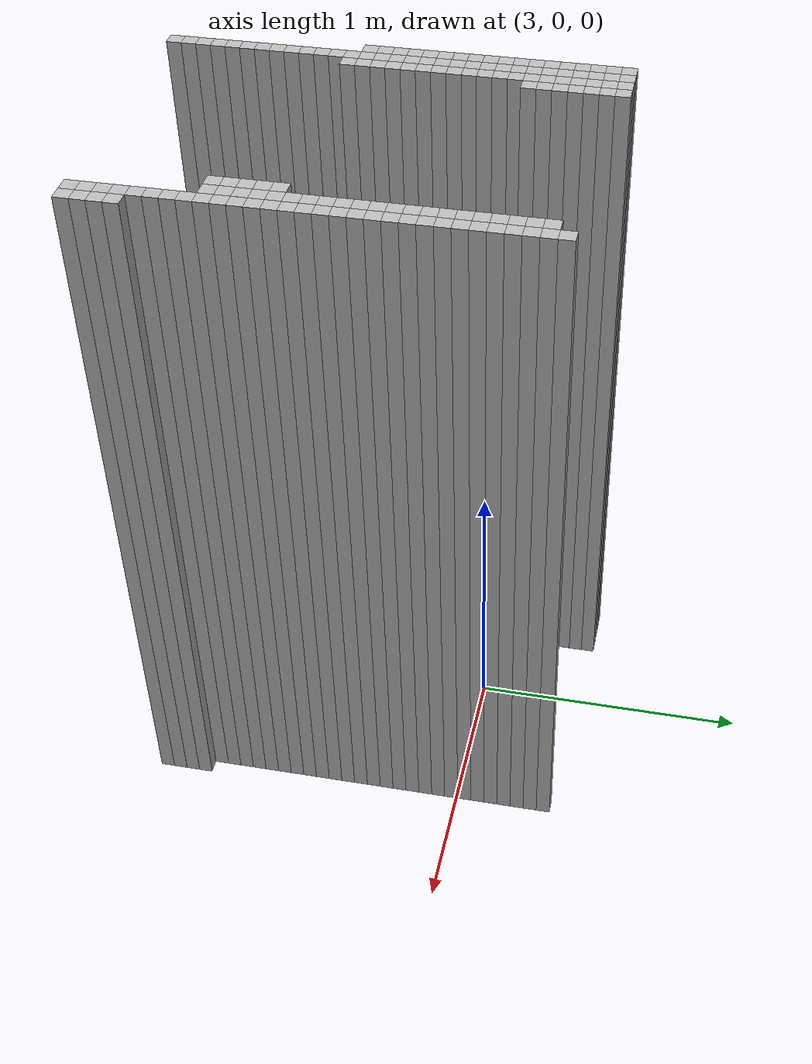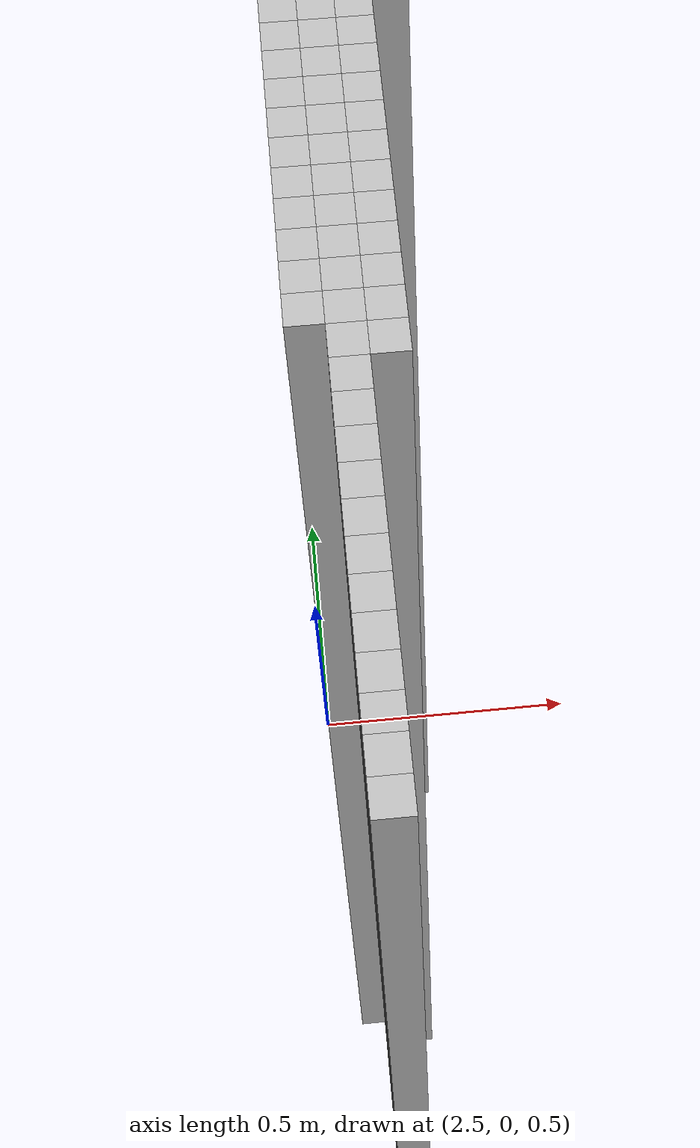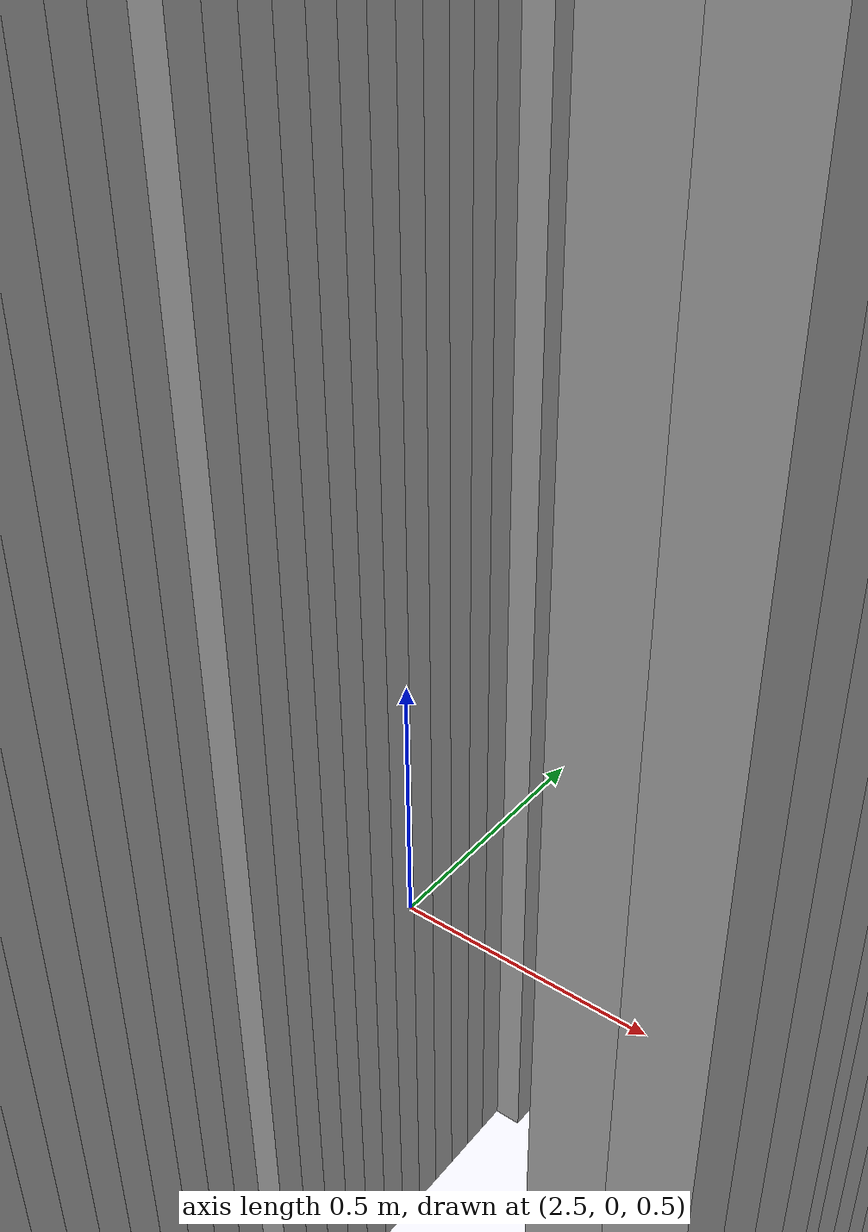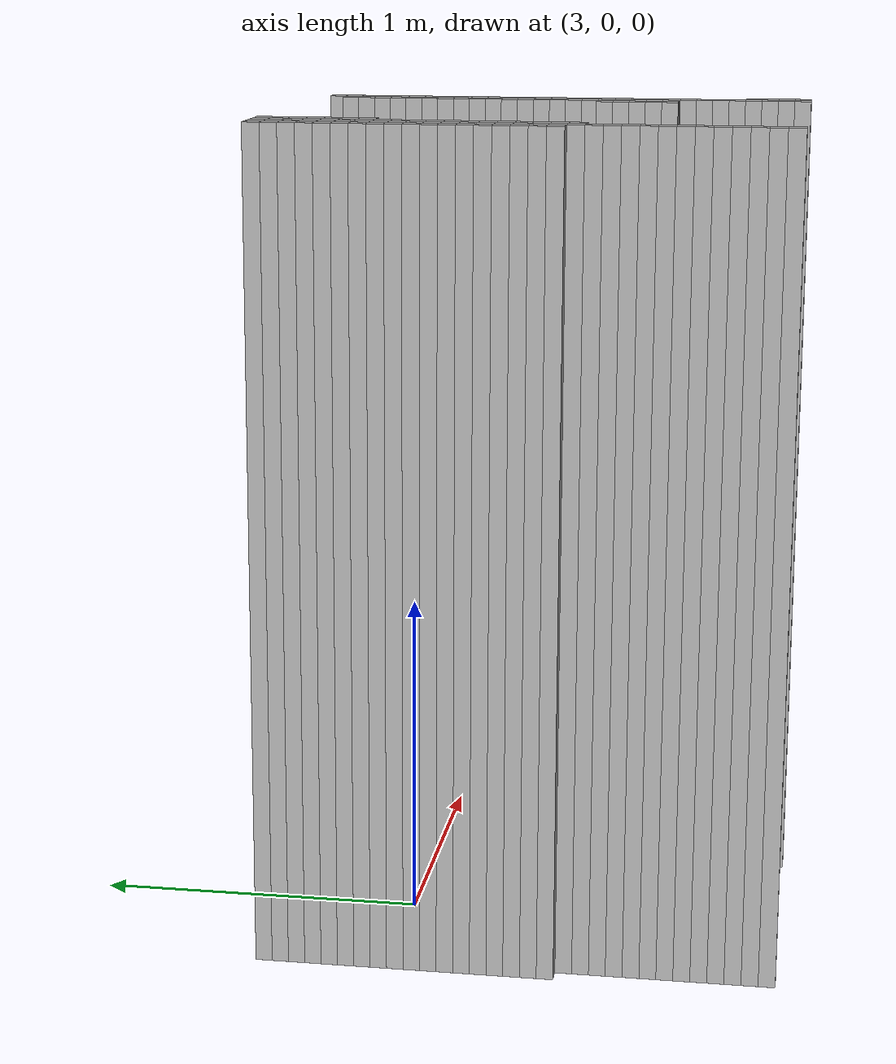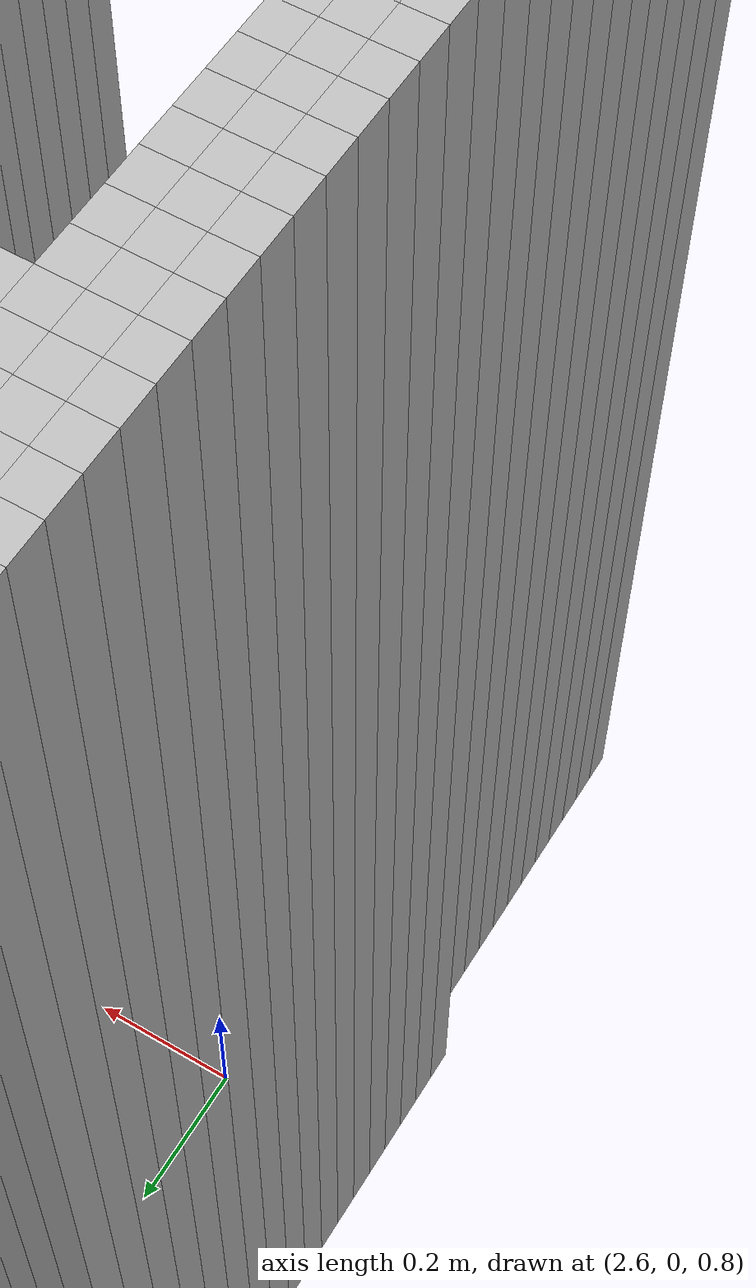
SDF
<sdf version="1.9">
 <world name="map_world">
  <model name="wall_274_146">
   <static>true</static>
   <pose>2.539 0.380 1.250 0 0 0</pose>
   <link name="link">
    <collision name="collision"><geometry><box><size>0.050 0.050 2.500</size></box></geometry></collision>
    <visual name="visual"><geometry><box><size>0.050 0.050 2.500</size></box></geometry></visual>
   </link>
  </model>
  <model name="wall_275_146">
   <static>true</static>
   <pose>2.589 0.380 1.250 0 0 0</pose>
   <link name="link">
    <collision name="collision"><geometry><box><size>0.050 0.050 2.500</size></box></geometry></collision>
    <visual name="visual"><geometry><box><size>0.050 0.050 2.500</size></box></geometry></visual>
   </link>
  </model>
  <model name="wall_276_146">
   <static>true</static>
   <pose>2.639 0.380 1.250 0 0 0</pose>
   <link name="link">
    <collision name="collision"><geometry><box><size>0.050 0.050 2.500</size></box></geometry></collision>
    <visual name="visual"><geometry><box><size>0.050 0.050 2.500</size></box></geometry></visual>
   </link>
  </model>
  <model name="wall_277_146">
   <static>true</static>
   <pose>2.689 0.380 1.250 0 0 0</pose>
   <link name="link">
    <collision name="collision"><geometry><box><size>0.050 0.050 2.500</size></box></geometry></collision>
    <visual name="visual"><geometry><box><size>0.050 0.050 2.500</size></box></geometry></visual>
   </link>
  </model>
  <model name="wall_274_147">
   <static>true</static>
   <pose>2.539 0.330 1.250 0 0 0</pose>
   <link name="link">
    <collision name="collision"><geometry><box><size>0.050 0.050 2.500</size></box></geometry></collision>
    <visual name="visual"><geometry><box><size>0.050 0.050 2.500</size></box></geometry></visual>
   </link>
  </model>
  <model name="wall_275_147">
   <static>true</static>
   <pose>2.589 0.330 1.250 0 0 0</pose>
   <link name="link">
    <collision name="collision"><geometry><box><size>0.050 0.050 2.500</size></box></geometry></collision>
    <visual name="visual"><geometry><box><size>0.050 0.050 2.500</size></box></geometry></visual>
   </link>
  </model>
  <model name="wall_276_147">
   <static>true</static>
   <pose>2.639 0.330 1.250 0 0 0</pose>
   <link name="link">
    <collision name="collision"><geometry><box><size>0.050 0.050 2.500</size></box></geometry></collision>
    <visual name="visual"><geometry><box><size>0.050 0.050 2.500</size></box></geometry></visual>
   </link>
  </model>
  <model name="wall_277_147">
   <static>true</static>
   <pose>2.689 0.330 1.250 0 0 0</pose>
   <link name="link">
    <collision name="collision"><geometry><box><size>0.050 0.050 2.500</size></box></geometry></collision>
    <visual name="visual"><geometry><box><size>0.050 0.050 2.500</size></box></geometry></visual>
   </link>
  </model>
  <model name="wall_294_147">
   <static>true</static>
   <pose>3.539 0.330 1.250 0 0 0</pose>
   <link name="link">
    <collision name="collision"><geometry><box><size>0.050 0.050 2.500</size></box></geometry></collision>
    <visual name="visual"><geometry><box><size>0.050 0.050 2.500</size></box></geometry></visual>
   </link>
  </model>
  <model name="wall_274_148">
   <static>true</static>
   <pose>2.539 0.280 1.250 0 0 0</pose>
   <link name="link">
    <collision name="collision"><geometry><box><size>0.050 0.050 2.500</size></box></geometry></collision>
    <visual name="visual"><geometry><box><size>0.050 0.050 2.500</size></box></geometry></visual>
   </link>
  </model>
  <model name="wall_275_148">
   <static>true</static>
   <pose>2.589 0.280 1.250 0 0 0</pose>
   <link name="link">
    <collision name="collision"><geometry><box><size>0.050 0.050 2.500</size></box></geometry></collision>
    <visual name="visual"><geometry><box><size>0.050 0.050 2.500</size></box></geometry></visual>
   </link>
  </model>
  <model name="wall_276_148">
   <static>true</static>
   <pose>2.639 0.280 1.250 0 0 0</pose>
   <link name="link">
    <collision name="collision"><geometry><box><size>0.050 0.050 2.500</size></box></geometry></collision>
    <visual name="visual"><geometry><box><size>0.050 0.050 2.500</size></box></geometry></visual>
   </link>
  </model>
  <model name="wall_277_148">
   <static>true</static>
   <pose>2.689 0.280 1.250 0 0 0</pose>
   <link name="link">
    <collision name="collision"><geometry><box><size>0.050 0.050 2.500</size></box></geometry></collision>
    <visual name="visual"><geometry><box><size>0.050 0.050 2.500</size></box></geometry></visual>
   </link>
  </model>
  <model name="wall_293_148">
   <static>true</static>
   <pose>3.489 0.280 1.250 0 0 0</pose>
   <link name="link">
    <collision name="collision"><geometry><box><size>0.050 0.050 2.500</size></box></geometry></collision>
    <visual name="visual"><geometry><box><size>0.050 0.050 2.500</size></box></geometry></visual>
   </link>
  </model>
  <model name="wall_294_148">
   <static>true</static>
   <pose>3.539 0.280 1.250 0 0 0</pose>
   <link name="link">
    <collision name="collision"><geometry><box><size>0.050 0.050 2.500</size></box></geometry></collision>
    <visual name="visual"><geometry><box><size>0.050 0.050 2.500</size></box></geometry></visual>
   </link>
  </model>
  <model name="wall_274_149">
   <static>true</static>
   <pose>2.539 0.230 1.250 0 0 0</pose>
   <link name="link">
    <collision name="collision"><geometry><box><size>0.050 0.050 2.500</size></box></geometry></collision>
    <visual name="visual"><geometry><box><size>0.050 0.050 2.500</size></box></geometry></visual>
   </link>
  </model>
  <model name="wall_275_149">
   <static>true</static>
   <pose>2.589 0.230 1.250 0 0 0</pose>
   <link name="link">
    <collision name="collision"><geometry><box><size>0.050 0.050 2.500</size></box></geometry></collision>
    <visual name="visual"><geometry><box><size>0.050 0.050 2.500</size></box></geometry></visual>
   </link>
  </model>
  <model name="wall_276_149">
   <static>true</static>
   <pose>2.639 0.230 1.250 0 0 0</pose>
   <link name="link">
    <collision name="collision"><geometry><box><size>0.050 0.050 2.500</size></box></geometry></collision>
    <visual name="visual"><geometry><box><size>0.050 0.050 2.500</size></box></geometry></visual>
   </link>
  </model>
  <model name="wall_277_149">
   <static>true</static>
   <pose>2.689 0.230 1.250 0 0 0</pose>
   <link name="link">
    <collision name="collision"><geometry><box><size>0.050 0.050 2.500</size></box></geometry></collision>
    <visual name="visual"><geometry><box><size>0.050 0.050 2.500</size></box></geometry></visual>
   </link>
  </model>
  <model name="wall_293_149">
   <static>true</static>
   <pose>3.489 0.230 1.250 0 0 0</pose>
   <link name="link">
    <collision name="collision"><geometry><box><size>0.050 0.050 2.500</size></box></geometry></collision>
    <visual name="visual"><geometry><box><size>0.050 0.050 2.500</size></box></geometry></visual>
   </link>
  </model>
  <model name="wall_294_149">
   <static>true</static>
   <pose>3.539 0.230 1.250 0 0 0</pose>
   <link name="link">
    <collision name="collision"><geometry><box><size>0.050 0.050 2.500</size></box></geometry></collision>
    <visual name="visual"><geometry><box><size>0.050 0.050 2.500</size></box></geometry></visual>
   </link>
  </model>
  <model name="wall_274_150">
   <static>true</static>
   <pose>2.539 0.180 1.250 0 0 0</pose>
   <link name="link">
    <collision name="collision"><geometry><box><size>0.050 0.050 2.500</size></box></geometry></collision>
    <visual name="visual"><geometry><box><size>0.050 0.050 2.500</size></box></geometry></visual>
   </link>
  </model>
  <model name="wall_275_150">
   <static>true</static>
   <pose>2.589 0.180 1.250 0 0 0</pose>
   <link name="link">
    <collision name="collision"><geometry><box><size>0.050 0.050 2.500</size></box></geometry></collision>
    <visual name="visual"><geometry><box><size>0.050 0.050 2.500</size></box></geometry></visual>
   </link>
  </model>
  <model name="wall_276_150">
   <static>true</static>
   <pose>2.639 0.180 1.250 0 0 0</pose>
   <link name="link">
    <collision name="collision"><geometry><box><size>0.050 0.050 2.500</size></box></geometry></collision>
    <visual name="visual"><geometry><box><size>0.050 0.050 2.500</size></box></geometry></visual>
   </link>
  </model>
  <model name="wall_277_150">
   <static>true</static>
   <pose>2.689 0.180 1.250 0 0 0</pose>
   <link name="link">
    <collision name="collision"><geometry><box><size>0.050 0.050 2.500</size></box></geometry></collision>
    <visual name="visual"><geometry><box><size>0.050 0.050 2.500</size></box></geometry></visual>
   </link>
  </model>
  <model name="wall_293_150">
   <static>true</static>
   <pose>3.489 0.180 1.250 0 0 0</pose>
   <link name="link">
    <collision name="collision"><geometry><box><size>0.050 0.050 2.500</size></box></geometry></collision>
    <visual name="visual"><geometry><box><size>0.050 0.050 2.500</size></box></geometry></visual>
   </link>
  </model>
  <model name="wall_294_150">
   <static>true</static>
   <pose>3.539 0.180 1.250 0 0 0</pose>
   <link name="link">
    <collision name="collision"><geometry><box><size>0.050 0.050 2.500</size></box></geometry></collision>
    <visual name="visual"><geometry><box><size>0.050 0.050 2.500</size></box></geometry></visual>
   </link>
  </model>
  <model name="wall_274_151">
   <static>true</static>
   <pose>2.539 0.130 1.250 0 0 0</pose>
   <link name="link">
    <collision name="collision"><geometry><box><size>0.050 0.050 2.500</size></box></geometry></collision>
    <visual name="visual"><geometry><box><size>0.050 0.050 2.500</size></box></geometry></visual>
   </link>
  </model>
  <model name="wall_275_151">
   <static>true</static>
   <pose>2.589 0.130 1.250 0 0 0</pose>
   <link name="link">
    <collision name="collision"><geometry><box><size>0.050 0.050 2.500</size></box></geometry></collision>
    <visual name="visual"><geometry><box><size>0.050 0.050 2.500</size></box></geometry></visual>
   </link>
  </model>
  <model name="wall_276_151">
   <static>true</static>
   <pose>2.639 0.130 1.250 0 0 0</pose>
   <link name="link">
    <collision name="collision"><geometry><box><size>0.050 0.050 2.500</size></box></geometry></collision>
    <visual name="visual"><geometry><box><size>0.050 0.050 2.500</size></box></geometry></visual>
   </link>
  </model>
  <model name="wall_277_151">
   <static>true</static>
   <pose>2.689 0.130 1.250 0 0 0</pose>
   <link name="link">
    <collision name="collision"><geometry><box><size>0.050 0.050 2.500</size></box></geometry></collision>
    <visual name="visual"><geometry><box><size>0.050 0.050 2.500</size></box></geometry></visual>
   </link>
  </model>
  <model name="wall_293_151">
   <static>true</static>
   <pose>3.489 0.130 1.250 0 0 0</pose>
   <link name="link">
    <collision name="collision"><geometry><box><size>0.050 0.050 2.500</size></box></geometry></collision>
    <visual name="visual"><geometry><box><size>0.050 0.050 2.500</size></box></geometry></visual>
   </link>
  </model>
  <model name="wall_294_151">
   <static>true</static>
   <pose>3.539 0.130 1.250 0 0 0</pose>
   <link name="link">
    <collision name="collision"><geometry><box><size>0.050 0.050 2.500</size></box></geometry></collision>
    <visual name="visual"><geometry><box><size>0.050 0.050 2.500</size></box></geometry></visual>
   </link>
  </model>
  <model name="wall_274_152">
   <static>true</static>
   <pose>2.539 0.080 1.250 0 0 0</pose>
   <link name="link">
    <collision name="collision"><geometry><box><size>0.050 0.050 2.500</size></box></geometry></collision>
    <visual name="visual"><geometry><box><size>0.050 0.050 2.500</size></box></geometry></visual>
   </link>
  </model>
  <model name="wall_275_152">
   <static>true</static>
   <pose>2.589 0.080 1.250 0 0 0</pose>
   <link name="link">
    <collision name="collision"><geometry><box><size>0.050 0.050 2.500</size></box></geometry></collision>
    <visual name="visual"><geometry><box><size>0.050 0.050 2.500</size></box></geometry></visual>
   </link>
  </model>
  <model name="wall_276_152">
   <static>true</static>
   <pose>2.639 0.080 1.250 0 0 0</pose>
   <link name="link">
    <collision name="collision"><geometry><box><size>0.050 0.050 2.500</size></box></geometry></collision>
    <visual name="visual"><geometry><box><size>0.050 0.050 2.500</size></box></geometry></visual>
   </link>
  </model>
  <model name="wall_277_152">
   <static>true</static>
   <pose>2.689 0.080 1.250 0 0 0</pose>
   <link name="link">
    <collision name="collision"><geometry><box><size>0.050 0.050 2.500</size></box></geometry></collision>
    <visual name="visual"><geometry><box><size>0.050 0.050 2.500</size></box></geometry></visual>
   </link>
  </model>
  <model name="wall_293_152">
   <static>true</static>
   <pose>3.489 0.080 1.250 0 0 0</pose>
   <link name="link">
    <collision name="collision"><geometry><box><size>0.050 0.050 2.500</size></box></geometry></collision>
    <visual name="visual"><geometry><box><size>0.050 0.050 2.500</size></box></geometry></visual>
   </link>
  </model>
  <model name="wall_294_152">
   <static>true</static>
   <pose>3.539 0.080 1.250 0 0 0</pose>
   <link name="link">
    <collision name="collision"><geometry><box><size>0.050 0.050 2.500</size></box></geometry></collision>
    <visual name="visual"><geometry><box><size>0.050 0.050 2.500</size></box></geometry></visual>
   </link>
  </model>
  <model name="wall_274_153">
   <static>true</static>
   <pose>2.539 0.030 1.250 0 0 0</pose>
   <link name="link">
    <collision name="collision"><geometry><box><size>0.050 0.050 2.500</size></box></geometry></collision>
    <visual name="visual"><geometry><box><size>0.050 0.050 2.500</size></box></geometry></visual>
   </link>
  </model>
  <model name="wall_275_153">
   <static>true</static>
   <pose>2.589 0.030 1.250 0 0 0</pose>
   <link name="link">
    <collision name="collision"><geometry><box><size>0.050 0.050 2.500</size></box></geometry></collision>
    <visual name="visual"><geometry><box><size>0.050 0.050 2.500</size></box></geometry></visual>
   </link>
  </model>
  <model name="wall_276_153">
   <static>true</static>
   <pose>2.639 0.030 1.250 0 0 0</pose>
   <link name="link">
    <collision name="collision"><geometry><box><size>0.050 0.050 2.500</size></box></geometry></collision>
    <visual name="visual"><geometry><box><size>0.050 0.050 2.500</size></box></geometry></visual>
   </link>
  </model>
  <model name="wall_293_153">
   <static>true</static>
   <pose>3.489 0.030 1.250 0 0 0</pose>
   <link name="link">
    <collision name="collision"><geometry><box><size>0.050 0.050 2.500</size></box></geometry></collision>
    <visual name="visual"><geometry><box><size>0.050 0.050 2.500</size></box></geometry></visual>
   </link>
  </model>
  <model name="wall_294_153">
   <static>true</static>
   <pose>3.539 0.030 1.250 0 0 0</pose>
   <link name="link">
    <collision name="collision"><geometry><box><size>0.050 0.050 2.500</size></box></geometry></collision>
    <visual name="visual"><geometry><box><size>0.050 0.050 2.500</size></box></geometry></visual>
   </link>
  </model>
  <model name="wall_274_154">
   <static>true</static>
   <pose>2.539 -0.020 1.250 0 0 0</pose>
   <link name="link">
    <collision name="collision"><geometry><box><size>0.050 0.050 2.500</size></box></geometry></collision>
    <visual name="visual"><geometry><box><size>0.050 0.050 2.500</size></box></geometry></visual>
   </link>
  </model>
  <model name="wall_275_154">
   <static>true</static>
   <pose>2.589 -0.020 1.250 0 0 0</pose>
   <link name="link">
    <collision name="collision"><geometry><box><size>0.050 0.050 2.500</size></box></geometry></collision>
    <visual name="visual"><geometry><box><size>0.050 0.050 2.500</size></box></geometry></visual>
   </link>
  </model>
  <model name="wall_276_154">
   <static>true</static>
   <pose>2.639 -0.020 1.250 0 0 0</pose>
   <link name="link">
    <collision name="collision"><geometry><box><size>0.050 0.050 2.500</size></box></geometry></collision>
    <visual name="visual"><geometry><box><size>0.050 0.050 2.500</size></box></geometry></visual>
   </link>
  </model>
  <model name="wall_293_154">
   <static>true</static>
   <pose>3.489 -0.020 1.250 0 0 0</pose>
   <link name="link">
    <collision name="collision"><geometry><box><size>0.050 0.050 2.500</size></box></geometry></collision>
    <visual name="visual"><geometry><box><size>0.050 0.050 2.500</size></box></geometry></visual>
   </link>
  </model>
  <model name="wall_294_154">
   <static>true</static>
   <pose>3.539 -0.020 1.250 0 0 0</pose>
   <link name="link">
    <collision name="collision"><geometry><box><size>0.050 0.050 2.500</size></box></geometry></collision>
    <visual name="visual"><geometry><box><size>0.050 0.050 2.500</size></box></geometry></visual>
   </link>
  </model>
  <model name="wall_274_155">
   <static>true</static>
   <pose>2.539 -0.070 1.250 0 0 0</pose>
   <link name="link">
    <collision name="collision"><geometry><box><size>0.050 0.050 2.500</size></box></geometry></collision>
    <visual name="visual"><geometry><box><size>0.050 0.050 2.500</size></box></geometry></visual>
   </link>
  </model>
  <model name="wall_275_155">
   <static>true</static>
   <pose>2.589 -0.070 1.250 0 0 0</pose>
   <link name="link">
    <collision name="collision"><geometry><box><size>0.050 0.050 2.500</size></box></geometry></collision>
    <visual name="visual"><geometry><box><size>0.050 0.050 2.500</size></box></geometry></visual>
   </link>
  </model>
  <model name="wall_276_155">
   <static>true</static>
   <pose>2.639 -0.070 1.250 0 0 0</pose>
   <link name="link">
    <collision name="collision"><geometry><box><size>0.050 0.050 2.500</size></box></geometry></collision>
    <visual name="visual"><geometry><box><size>0.050 0.050 2.500</size></box></geometry></visual>
   </link>
  </model>
  <model name="wall_293_155">
   <static>true</static>
   <pose>3.489 -0.070 1.250 0 0 0</pose>
   <link name="link">
    <collision name="collision"><geometry><box><size>0.050 0.050 2.500</size></box></geometry></collision>
    <visual name="visual"><geometry><box><size>0.050 0.050 2.500</size></box></geometry></visual>
   </link>
  </model>
  <model name="wall_294_155">
   <static>true</static>
   <pose>3.539 -0.070 1.250 0 0 0</pose>
   <link name="link">
    <collision name="collision"><geometry><box><size>0.050 0.050 2.500</size></box></geometry></collision>
    <visual name="visual"><geometry><box><size>0.050 0.050 2.500</size></box></geometry></visual>
   </link>
  </model>
  <model name="wall_274_156">
   <static>true</static>
   <pose>2.539 -0.120 1.250 0 0 0</pose>
   <link name="link">
    <collision name="collision"><geometry><box><size>0.050 0.050 2.500</size></box></geometry></collision>
    <visual name="visual"><geometry><box><size>0.050 0.050 2.500</size></box></geometry></visual>
   </link>
  </model>
  <model name="wall_275_156">
   <static>true</static>
   <pose>2.589 -0.120 1.250 0 0 0</pose>
   <link name="link">
    <collision name="collision"><geometry><box><size>0.050 0.050 2.500</size></box></geometry></collision>
    <visual name="visual"><geometry><box><size>0.050 0.050 2.500</size></box></geometry></visual>
   </link>
  </model>
  <model name="wall_276_156">
   <static>true</static>
   <pose>2.639 -0.120 1.250 0 0 0</pose>
   <link name="link">
    <collision name="collision"><geometry><box><size>0.050 0.050 2.500</size></box></geometry></collision>
    <visual name="visual"><geometry><box><size>0.050 0.050 2.500</size></box></geometry></visual>
   </link>
  </model>
  <model name="wall_293_156">
   <static>true</static>
   <pose>3.489 -0.120 1.250 0 0 0</pose>
   <link name="link">
    <collision name="collision"><geometry><box><size>0.050 0.050 2.500</size></box></geometry></collision>
    <visual name="visual"><geometry><box><size>0.050 0.050 2.500</size></box></geometry></visual>
   </link>
  </model>
  <model name="wall_294_156">
   <static>true</static>
   <pose>3.539 -0.120 1.250 0 0 0</pose>
   <link name="link">
    <collision name="collision"><geometry><box><size>0.050 0.050 2.500</size></box></geometry></collision>
    <visual name="visual"><geometry><box><size>0.050 0.050 2.500</size></box></geometry></visual>
   </link>
  </model>
  <model name="wall_274_157">
   <static>true</static>
   <pose>2.539 -0.170 1.250 0 0 0</pose>
   <link name="link">
    <collision name="collision"><geometry><box><size>0.050 0.050 2.500</size></box></geometry></collision>
    <visual name="visual"><geometry><box><size>0.050 0.050 2.500</size></box></geometry></visual>
   </link>
  </model>
  <model name="wall_275_157">
   <static>true</static>
   <pose>2.589 -0.170 1.250 0 0 0</pose>
   <link name="link">
    <collision name="collision"><geometry><box><size>0.050 0.050 2.500</size></box></geometry></collision>
    <visual name="visual"><geometry><box><size>0.050 0.050 2.500</size></box></geometry></visual>
   </link>
  </model>
  <model name="wall_276_157">
   <static>true</static>
   <pose>2.639 -0.170 1.250 0 0 0</pose>
   <link name="link">
    <collision name="collision"><geometry><box><size>0.050 0.050 2.500</size></box></geometry></collision>
    <visual name="visual"><geometry><box><size>0.050 0.050 2.500</size></box></geometry></visual>
   </link>
  </model>
  <model name="wall_293_157">
   <static>true</static>
   <pose>3.489 -0.170 1.250 0 0 0</pose>
   <link name="link">
    <collision name="collision"><geometry><box><size>0.050 0.050 2.500</size></box></geometry></collision>
    <visual name="visual"><geometry><box><size>0.050 0.050 2.500</size></box></geometry></visual>
   </link>
  </model>
  <model name="wall_294_157">
   <static>true</static>
   <pose>3.539 -0.170 1.250 0 0 0</pose>
   <link name="link">
    <collision name="collision"><geometry><box><size>0.050 0.050 2.500</size></box></geometry></collision>
    <visual name="visual"><geometry><box><size>0.050 0.050 2.500</size></box></geometry></visual>
   </link>
  </model>
  <model name="wall_274_158">
   <static>true</static>
   <pose>2.539 -0.220 1.250 0 0 0</pose>
   <link name="link">
    <collision name="collision"><geometry><box><size>0.050 0.050 2.500</size></box></geometry></collision>
    <visual name="visual"><geometry><box><size>0.050 0.050 2.500</size></box></geometry></visual>
   </link>
  </model>
  <model name="wall_275_158">
   <static>true</static>
   <pose>2.589 -0.220 1.250 0 0 0</pose>
   <link name="link">
    <collision name="collision"><geometry><box><size>0.050 0.050 2.500</size></box></geometry></collision>
    <visual name="visual"><geometry><box><size>0.050 0.050 2.500</size></box></geometry></visual>
   </link>
  </model>
  <model name="wall_276_158">
   <static>true</static>
   <pose>2.639 -0.220 1.250 0 0 0</pose>
   <link name="link">
    <collision name="collision"><geometry><box><size>0.050 0.050 2.500</size></box></geometry></collision>
    <visual name="visual"><geometry><box><size>0.050 0.050 2.500</size></box></geometry></visual>
   </link>
  </model>
  <model name="wall_293_158">
   <static>true</static>
   <pose>3.489 -0.220 1.250 0 0 0</pose>
   <link name="link">
    <collision name="collision"><geometry><box><size>0.050 0.050 2.500</size></box></geometry></collision>
    <visual name="visual"><geometry><box><size>0.050 0.050 2.500</size></box></geometry></visual>
   </link>
  </model>
  <model name="wall_294_158">
   <static>true</static>
   <pose>3.539 -0.220 1.250 0 0 0</pose>
   <link name="link">
    <collision name="collision"><geometry><box><size>0.050 0.050 2.500</size></box></geometry></collision>
    <visual name="visual"><geometry><box><size>0.050 0.050 2.500</size></box></geometry></visual>
   </link>
  </model>
  <model name="wall_274_159">
   <static>true</static>
   <pose>2.539 -0.270 1.250 0 0 0</pose>
   <link name="link">
    <collision name="collision"><geometry><box><size>0.050 0.050 2.500</size></box></geometry></collision>
    <visual name="visual"><geometry><box><size>0.050 0.050 2.500</size></box></geometry></visual>
   </link>
  </model>
  <model name="wall_275_159">
   <static>true</static>
   <pose>2.589 -0.270 1.250 0 0 0</pose>
   <link name="link">
    <collision name="collision"><geometry><box><size>0.050 0.050 2.500</size></box></geometry></collision>
    <visual name="visual"><geometry><box><size>0.050 0.050 2.500</size></box></geometry></visual>
   </link>
  </model>
  <model name="wall_276_159">
   <static>true</static>
   <pose>2.639 -0.270 1.250 0 0 0</pose>
   <link name="link">
    <collision name="collision"><geometry><box><size>0.050 0.050 2.500</size></box></geometry></collision>
    <visual name="visual"><geometry><box><size>0.050 0.050 2.500</size></box></geometry></visual>
   </link>
  </model>
  <model name="wall_293_159">
   <static>true</static>
   <pose>3.489 -0.270 1.250 0 0 0</pose>
   <link name="link">
    <collision name="collision"><geometry><box><size>0.050 0.050 2.500</size></box></geometry></collision>
    <visual name="visual"><geometry><box><size>0.050 0.050 2.500</size></box></geometry></visual>
   </link>
  </model>
  <model name="wall_294_159">
   <static>true</static>
   <pose>3.539 -0.270 1.250 0 0 0</pose>
   <link name="link">
    <collision name="collision"><geometry><box><size>0.050 0.050 2.500</size></box></geometry></collision>
    <visual name="visual"><geometry><box><size>0.050 0.050 2.500</size></box></geometry></visual>
   </link>
  </model>
  <model name="wall_274_160">
   <static>true</static>
   <pose>2.539 -0.320 1.250 0 0 0</pose>
   <link name="link">
    <collision name="collision"><geometry><box><size>0.050 0.050 2.500</size></box></geometry></collision>
    <visual name="visual"><geometry><box><size>0.050 0.050 2.500</size></box></geometry></visual>
   </link>
  </model>
  <model name="wall_275_160">
   <static>true</static>
   <pose>2.589 -0.320 1.250 0 0 0</pose>
   <link name="link">
    <collision name="collision"><geometry><box><size>0.050 0.050 2.500</size></box></geometry></collision>
    <visual name="visual"><geometry><box><size>0.050 0.050 2.500</size></box></geometry></visual>
   </link>
  </model>
  <model name="wall_276_160">
   <static>true</static>
   <pose>2.639 -0.320 1.250 0 0 0</pose>
   <link name="link">
    <collision name="collision"><geometry><box><size>0.050 0.050 2.500</size></box></geometry></collision>
    <visual name="visual"><geometry><box><size>0.050 0.050 2.500</size></box></geometry></visual>
   </link>
  </model>
  <model name="wall_293_160">
   <static>true</static>
   <pose>3.489 -0.320 1.250 0 0 0</pose>
   <link name="link">
    <collision name="collision"><geometry><box><size>0.050 0.050 2.500</size></box></geometry></collision>
    <visual name="visual"><geometry><box><size>0.050 0.050 2.500</size></box></geometry></visual>
   </link>
  </model>
  <model name="wall_294_160">
   <static>true</static>
   <pose>3.539 -0.320 1.250 0 0 0</pose>
   <link name="link">
    <collision name="collision"><geometry><box><size>0.050 0.050 2.500</size></box></geometry></collision>
    <visual name="visual"><geometry><box><size>0.050 0.050 2.500</size></box></geometry></visual>
   </link>
  </model>
  <model name="wall_274_161">
   <static>true</static>
   <pose>2.539 -0.370 1.250 0 0 0</pose>
   <link name="link">
    <collision name="collision"><geometry><box><size>0.050 0.050 2.500</size></box></geometry></collision>
    <visual name="visual"><geometry><box><size>0.050 0.050 2.500</size></box></geometry></visual>
   </link>
  </model>
  <model name="wall_275_161">
   <static>true</static>
   <pose>2.589 -0.370 1.250 0 0 0</pose>
   <link name="link">
    <collision name="collision"><geometry><box><size>0.050 0.050 2.500</size></box></geometry></collision>
    <visual name="visual"><geometry><box><size>0.050 0.050 2.500</size></box></geometry></visual>
   </link>
  </model>
  <model name="wall_276_161">
   <static>true</static>
   <pose>2.639 -0.370 1.250 0 0 0</pose>
   <link name="link">
    <collision name="collision"><geometry><box><size>0.050 0.050 2.500</size></box></geometry></collision>
    <visual name="visual"><geometry><box><size>0.050 0.050 2.500</size></box></geometry></visual>
   </link>
  </model>
  <model name="wall_293_161">
   <static>true</static>
   <pose>3.489 -0.370 1.250 0 0 0</pose>
   <link name="link">
    <collision name="collision"><geometry><box><size>0.050 0.050 2.500</size></box></geometry></collision>
    <visual name="visual"><geometry><box><size>0.050 0.050 2.500</size></box></geometry></visual>
   </link>
  </model>
  <model name="wall_294_161">
   <static>true</static>
   <pose>3.539 -0.370 1.250 0 0 0</pose>
   <link name="link">
    <collision name="collision"><geometry><box><size>0.050 0.050 2.500</size></box></geometry></collision>
    <visual name="visual"><geometry><box><size>0.050 0.050 2.500</size></box></geometry></visual>
   </link>
  </model>
  <model name="wall_274_162">
   <static>true</static>
   <pose>2.539 -0.420 1.250 0 0 0</pose>
   <link name="link">
    <collision name="collision"><geometry><box><size>0.050 0.050 2.500</size></box></geometry></collision>
    <visual name="visual"><geometry><box><size>0.050 0.050 2.500</size></box></geometry></visual>
   </link>
  </model>
  <model name="wall_275_162">
   <static>true</static>
   <pose>2.589 -0.420 1.250 0 0 0</pose>
   <link name="link">
    <collision name="collision"><geometry><box><size>0.050 0.050 2.500</size></box></geometry></collision>
    <visual name="visual"><geometry><box><size>0.050 0.050 2.500</size></box></geometry></visual>
   </link>
  </model>
  <model name="wall_276_162">
   <static>true</static>
   <pose>2.639 -0.420 1.250 0 0 0</pose>
   <link name="link">
    <collision name="collision"><geometry><box><size>0.050 0.050 2.500</size></box></geometry></collision>
    <visual name="visual"><geometry><box><size>0.050 0.050 2.500</size></box></geometry></visual>
   </link>
  </model>
  <model name="wall_293_162">
   <static>true</static>
   <pose>3.489 -0.420 1.250 0 0 0</pose>
   <link name="link">
    <collision name="collision"><geometry><box><size>0.050 0.050 2.500</size></box></geometry></collision>
    <visual name="visual"><geometry><box><size>0.050 0.050 2.500</size></box></geometry></visual>
   </link>
  </model>
  <model name="wall_294_162">
   <static>true</static>
   <pose>3.539 -0.420 1.250 0 0 0</pose>
   <link name="link">
    <collision name="collision"><geometry><box><size>0.050 0.050 2.500</size></box></geometry></collision>
    <visual name="visual"><geometry><box><size>0.050 0.050 2.500</size></box></geometry></visual>
   </link>
  </model>
  <model name="wall_274_163">
   <static>true</static>
   <pose>2.539 -0.470 1.250 0 0 0</pose>
   <link name="link">
    <collision name="collision"><geometry><box><size>0.050 0.050 2.500</size></box></geometry></collision>
    <visual name="visual"><geometry><box><size>0.050 0.050 2.500</size></box></geometry></visual>
   </link>
  </model>
  <model name="wall_275_163">
   <static>true</static>
   <pose>2.589 -0.470 1.250 0 0 0</pose>
   <link name="link">
    <collision name="collision"><geometry><box><size>0.050 0.050 2.500</size></box></geometry></collision>
    <visual name="visual"><geometry><box><size>0.050 0.050 2.500</size></box></geometry></visual>
   </link>
  </model>
  <model name="wall_276_163">
   <static>true</static>
   <pose>2.639 -0.470 1.250 0 0 0</pose>
   <link name="link">
    <collision name="collision"><geometry><box><size>0.050 0.050 2.500</size></box></geometry></collision>
    <visual name="visual"><geometry><box><size>0.050 0.050 2.500</size></box></geometry></visual>
   </link>
  </model>
  <model name="wall_293_163">
   <static>true</static>
   <pose>3.489 -0.470 1.250 0 0 0</pose>
   <link name="link">
    <collision name="collision"><geometry><box><size>0.050 0.050 2.500</size></box></geometry></collision>
    <visual name="visual"><geometry><box><size>0.050 0.050 2.500</size></box></geometry></visual>
   </link>
  </model>
  <model name="wall_294_163">
   <static>true</static>
   <pose>3.539 -0.470 1.250 0 0 0</pose>
   <link name="link">
    <collision name="collision"><geometry><box><size>0.050 0.050 2.500</size></box></geometry></collision>
    <visual name="visual"><geometry><box><size>0.050 0.050 2.500</size></box></geometry></visual>
   </link>
  </model>
  <model name="wall_275_164">
   <static>true</static>
   <pose>2.589 -0.520 1.250 0 0 0</pose>
   <link name="link">
    <collision name="collision"><geometry><box><size>0.050 0.050 2.500</size></box></geometry></collision>
    <visual name="visual"><geometry><box><size>0.050 0.050 2.500</size></box></geometry></visual>
   </link>
  </model>
  <model name="wall_276_164">
   <static>true</static>
   <pose>2.639 -0.520 1.250 0 0 0</pose>
   <link name="link">
    <collision name="collision"><geometry><box><size>0.050 0.050 2.500</size></box></geometry></collision>
    <visual name="visual"><geometry><box><size>0.050 0.050 2.500</size></box></geometry></visual>
   </link>
  </model>
  <model name="wall_292_164">
   <static>true</static>
   <pose>3.439 -0.520 1.250 0 0 0</pose>
   <link name="link">
    <collision name="collision"><geometry><box><size>0.050 0.050 2.500</size></box></geometry></collision>
    <visual name="visual"><geometry><box><size>0.050 0.050 2.500</size></box></geometry></visual>
   </link>
  </model>
  <model name="wall_293_164">
   <static>true</static>
   <pose>3.489 -0.520 1.250 0 0 0</pose>
   <link name="link">
    <collision name="collision"><geometry><box><size>0.050 0.050 2.500</size></box></geometry></collision>
    <visual name="visual"><geometry><box><size>0.050 0.050 2.500</size></box></geometry></visual>
   </link>
  </model>
  <model name="wall_294_164">
   <static>true</static>
   <pose>3.539 -0.520 1.250 0 0 0</pose>
   <link name="link">
    <collision name="collision"><geometry><box><size>0.050 0.050 2.500</size></box></geometry></collision>
    <visual name="visual"><geometry><box><size>0.050 0.050 2.500</size></box></geometry></visual>
   </link>
  </model>
  <model name="wall_275_165">
   <static>true</static>
   <pose>2.589 -0.570 1.250 0 0 0</pose>
   <link name="link">
    <collision name="collision"><geometry><box><size>0.050 0.050 2.500</size></box></geometry></collision>
    <visual name="visual"><geometry><box><size>0.050 0.050 2.500</size></box></geometry></visual>
   </link>
  </model>
  <model name="wall_292_165">
   <static>true</static>
   <pose>3.439 -0.570 1.250 0 0 0</pose>
   <link name="link">
    <collision name="collision"><geometry><box><size>0.050 0.050 2.500</size></box></geometry></collision>
    <visual name="visual"><geometry><box><size>0.050 0.050 2.500</size></box></geometry></visual>
   </link>
  </model>
  <model name="wall_293_165">
   <static>true</static>
   <pose>3.489 -0.570 1.250 0 0 0</pose>
   <link name="link">
    <collision name="collision"><geometry><box><size>0.050 0.050 2.500</size></box></geometry></collision>
    <visual name="visual"><geometry><box><size>0.050 0.050 2.500</size></box></geometry></visual>
   </link>
  </model>
  <model name="wall_294_165">
   <static>true</static>
   <pose>3.539 -0.570 1.250 0 0 0</pose>
   <link name="link">
    <collision name="collision"><geometry><box><size>0.050 0.050 2.500</size></box></geometry></collision>
    <visual name="visual"><geometry><box><size>0.050 0.050 2.500</size></box></geometry></visual>
   </link>
  </model>
  <model name="wall_275_166">
   <static>true</static>
   <pose>2.589 -0.620 1.250 0 0 0</pose>
   <link name="link">
    <collision name="collision"><geometry><box><size>0.050 0.050 2.500</size></box></geometry></collision>
    <visual name="visual"><geometry><box><size>0.050 0.050 2.500</size></box></geometry></visual>
   </link>
  </model>
  <model name="wall_292_166">
   <static>true</static>
   <pose>3.439 -0.620 1.250 0 0 0</pose>
   <link name="link">
    <collision name="collision"><geometry><box><size>0.050 0.050 2.500</size></box></geometry></collision>
    <visual name="visual"><geometry><box><size>0.050 0.050 2.500</size></box></geometry></visual>
   </link>
  </model>
  <model name="wall_293_166">
   <static>true</static>
   <pose>3.489 -0.620 1.250 0 0 0</pose>
   <link name="link">
    <collision name="collision"><geometry><box><size>0.050 0.050 2.500</size></box></geometry></collision>
    <visual name="visual"><geometry><box><size>0.050 0.050 2.500</size></box></geometry></visual>
   </link>
  </model>
  <model name="wall_294_166">
   <static>true</static>
   <pose>3.539 -0.620 1.250 0 0 0</pose>
   <link name="link">
    <collision name="collision"><geometry><box><size>0.050 0.050 2.500</size></box></geometry></collision>
    <visual name="visual"><geometry><box><size>0.050 0.050 2.500</size></box></geometry></visual>
   </link>
  </model>
  <model name="wall_275_167">
   <static>true</static>
   <pose>2.589 -0.670 1.250 0 0 0</pose>
   <link name="link">
    <collision name="collision"><geometry><box><size>0.050 0.050 2.500</size></box></geometry></collision>
    <visual name="visual"><geometry><box><size>0.050 0.050 2.500</size></box></geometry></visual>
   </link>
  </model>
  <model name="wall_292_167">
   <static>true</static>
   <pose>3.439 -0.670 1.250 0 0 0</pose>
   <link name="link">
    <collision name="collision"><geometry><box><size>0.050 0.050 2.500</size></box></geometry></collision>
    <visual name="visual"><geometry><box><size>0.050 0.050 2.500</size></box></geometry></visual>
   </link>
  </model>
  <model name="wall_293_167">
   <static>true</static>
   <pose>3.489 -0.670 1.250 0 0 0</pose>
   <link name="link">
    <collision name="collision"><geometry><box><size>0.050 0.050 2.500</size></box></geometry></collision>
    <visual name="visual"><geometry><box><size>0.050 0.050 2.500</size></box></geometry></visual>
   </link>
  </model>
  <model name="wall_294_167">
   <static>true</static>
   <pose>3.539 -0.670 1.250 0 0 0</pose>
   <link name="link">
    <collision name="collision"><geometry><box><size>0.050 0.050 2.500</size></box></geometry></collision>
    <visual name="visual"><geometry><box><size>0.050 0.050 2.500</size></box></geometry></visual>
   </link>
  </model>
  <model name="wall_275_168">
   <static>true</static>
   <pose>2.589 -0.720 1.250 0 0 0</pose>
   <link name="link">
    <collision name="collision"><geometry><box><size>0.050 0.050 2.500</size></box></geometry></collision>
    <visual name="visual"><geometry><box><size>0.050 0.050 2.500</size></box></geometry></visual>
   </link>
  </model>
  <model name="wall_292_168">
   <static>true</static>
   <pose>3.439 -0.720 1.250 0 0 0</pose>
   <link name="link">
    <collision name="collision"><geometry><box><size>0.050 0.050 2.500</size></box></geometry></collision>
    <visual name="visual"><geometry><box><size>0.050 0.050 2.500</size></box></geometry></visual>
   </link>
  </model>
  <model name="wall_293_168">
   <static>true</static>
   <pose>3.489 -0.720 1.250 0 0 0</pose>
   <link name="link">
    <collision name="collision"><geometry><box><size>0.050 0.050 2.500</size></box></geometry></collision>
    <visual name="visual"><geometry><box><size>0.050 0.050 2.500</size></box></geometry></visual>
   </link>
  </model>
  <model name="wall_294_168">
   <static>true</static>
   <pose>3.539 -0.720 1.250 0 0 0</pose>
   <link name="link">
    <collision name="collision"><geometry><box><size>0.050 0.050 2.500</size></box></geometry></collision>
    <visual name="visual"><geometry><box><size>0.050 0.050 2.500</size></box></geometry></visual>
   </link>
  </model>
  <model name="wall_275_169">
   <static>true</static>
   <pose>2.589 -0.770 1.250 0 0 0</pose>
   <link name="link">
    <collision name="collision"><geometry><box><size>0.050 0.050 2.500</size></box></geometry></collision>
    <visual name="visual"><geometry><box><size>0.050 0.050 2.500</size></box></geometry></visual>
   </link>
  </model>
  <model name="wall_294_169">
   <static>true</static>
   <pose>3.539 -0.770 1.250 0 0 0</pose>
   <link name="link">
    <collision name="collision"><geometry><box><size>0.050 0.050 2.500</size></box></geometry></collision>
    <visual name="visual"><geometry><box><size>0.050 0.050 2.500</size></box></geometry></visual>
   </link>
  </model>
  <model name="wall_275_170">
   <static>true</static>
   <pose>2.589 -0.820 1.250 0 0 0</pose>
   <link name="link">
    <collision name="collision"><geometry><box><size>0.050 0.050 2.500</size></box></geometry></collision>
    <visual name="visual"><geometry><box><size>0.050 0.050 2.500</size></box></geometry></visual>
   </link>
  </model>
  <model name="wall_294_170">
   <static>true</static>
   <pose>3.539 -0.820 1.250 0 0 0</pose>
   <link name="link">
    <collision name="collision"><geometry><box><size>0.050 0.050 2.500</size></box></geometry></collision>
    <visual name="visual"><geometry><box><size>0.050 0.050 2.500</size></box></geometry></visual>
   </link>
  </model>
  <model name="wall_275_171">
   <static>true</static>
   <pose>2.589 -0.870 1.250 0 0 0</pose>
   <link name="link">
    <collision name="collision"><geometry><box><size>0.050 0.050 2.500</size></box></geometry></collision>
    <visual name="visual"><geometry><box><size>0.050 0.050 2.500</size></box></geometry></visual>
   </link>
  </model>
  <model name="wall_294_171">
   <static>true</static>
   <pose>3.539 -0.870 1.250 0 0 0</pose>
   <link name="link">
    <collision name="collision"><geometry><box><size>0.050 0.050 2.500</size></box></geometry></collision>
    <visual name="visual"><geometry><box><size>0.050 0.050 2.500</size></box></geometry></visual>
   </link>
  </model>
  <model name="wall_275_172">
   <static>true</static>
   <pose>2.589 -0.920 1.250 0 0 0</pose>
   <link name="link">
    <collision name="collision"><geometry><box><size>0.050 0.050 2.500</size></box></geometry></collision>
    <visual name="visual"><geometry><box><size>0.050 0.050 2.500</size></box></geometry></visual>
   </link>
  </model>
  <model name="wall_294_172">
   <static>true</static>
   <pose>3.539 -0.920 1.250 0 0 0</pose>
   <link name="link">
    <collision name="collision"><geometry><box><size>0.050 0.050 2.500</size></box></geometry></collision>
    <visual name="visual"><geometry><box><size>0.050 0.050 2.500</size></box></geometry></visual>
   </link>
  </model>
  <model name="wall_275_173">
   <static>true</static>
   <pose>2.589 -0.970 1.250 0 0 0</pose>
   <link name="link">
    <collision name="collision"><geometry><box><size>0.050 0.050 2.500</size></box></geometry></collision>
    <visual name="visual"><geometry><box><size>0.050 0.050 2.500</size></box></geometry></visual>
   </link>
  </model>
  <model name="wall_294_173">
   <static>true</static>
   <pose>3.539 -0.970 1.250 0 0 0</pose>
   <link name="link">
    <collision name="collision"><geometry><box><size>0.050 0.050 2.500</size></box></geometry></collision>
    <visual name="visual"><geometry><box><size>0.050 0.050 2.500</size></box></geometry></visual>
   </link>
  </model>
  <model name="wall_295_173">
   <static>true</static>
   <pose>3.589 -0.970 1.250 0 0 0</pose>
   <link name="link">
    <collision name="collision"><geometry><box><size>0.050 0.050 2.500</size></box></geometry></collision>
    <visual name="visual"><geometry><box><size>0.050 0.050 2.500</size></box></geometry></visual>
   </link>
  </model>
  <model name="wall_275_174">
   <static>true</static>
   <pose>2.589 -1.020 1.250 0 0 0</pose>
   <link name="link">
    <collision name="collision"><geometry><box><size>0.050 0.050 2.500</size></box></geometry></collision>
    <visual name="visual"><geometry><box><size>0.050 0.050 2.500</size></box></geometry></visual>
   </link>
  </model>
  <model name="wall_294_174">
   <static>true</static>
   <pose>3.539 -1.020 1.250 0 0 0</pose>
   <link name="link">
    <collision name="collision"><geometry><box><size>0.050 0.050 2.500</size></box></geometry></collision>
    <visual name="visual"><geometry><box><size>0.050 0.050 2.500</size></box></geometry></visual>
   </link>
  </model>
  <model name="wall_295_174">
   <static>true</static>
   <pose>3.589 -1.020 1.250 0 0 0</pose>
   <link name="link">
    <collision name="collision"><geometry><box><size>0.050 0.050 2.500</size></box></geometry></collision>
    <visual name="visual"><geometry><box><size>0.050 0.050 2.500</size></box></geometry></visual>
   </link>
  </model>
  <model name="wall_275_175">
   <static>true</static>
   <pose>2.589 -1.070 1.250 0 0 0</pose>
   <link name="link">
    <collision name="collision"><geometry><box><size>0.050 0.050 2.500</size></box></geometry></collision>
    <visual name="visual"><geometry><box><size>0.050 0.050 2.500</size></box></geometry></visual>
   </link>
  </model>
  <model name="wall_294_175">
   <static>true</static>
   <pose>3.539 -1.070 1.250 0 0 0</pose>
   <link name="link">
    <collision name="collision"><geometry><box><size>0.050 0.050 2.500</size></box></geometry></collision>
    <visual name="visual"><geometry><box><size>0.050 0.050 2.500</size></box></geometry></visual>
   </link>
  </model>
  <model name="wall_295_175">
   <static>true</static>
   <pose>3.589 -1.070 1.250 0 0 0</pose>
   <link name="link">
    <collision name="collision"><geometry><box><size>0.050 0.050 2.500</size></box></geometry></collision>
    <visual name="visual"><geometry><box><size>0.050 0.050 2.500</size></box></geometry></visual>
   </link>
  </model>
  <model name="wall_275_176">
   <static>true</static>
   <pose>2.589 -1.120 1.250 0 0 0</pose>
   <link name="link">
    <collision name="collision"><geometry><box><size>0.050 0.050 2.500</size></box></geometry></collision>
    <visual name="visual"><geometry><box><size>0.050 0.050 2.500</size></box></geometry></visual>
   </link>
  </model>
  <model name="wall_294_176">
   <static>true</static>
   <pose>3.539 -1.120 1.250 0 0 0</pose>
   <link name="link">
    <collision name="collision"><geometry><box><size>0.050 0.050 2.500</size></box></geometry></collision>
    <visual name="visual"><geometry><box><size>0.050 0.050 2.500</size></box></geometry></visual>
   </link>
  </model>
  <model name="wall_295_176">
   <static>true</static>
   <pose>3.589 -1.120 1.250 0 0 0</pose>
   <link name="link">
    <collision name="collision"><geometry><box><size>0.050 0.050 2.500</size></box></geometry></collision>
    <visual name="visual"><geometry><box><size>0.050 0.050 2.500</size></box></geometry></visual>
   </link>
  </model>
 </world>
</sdf>
